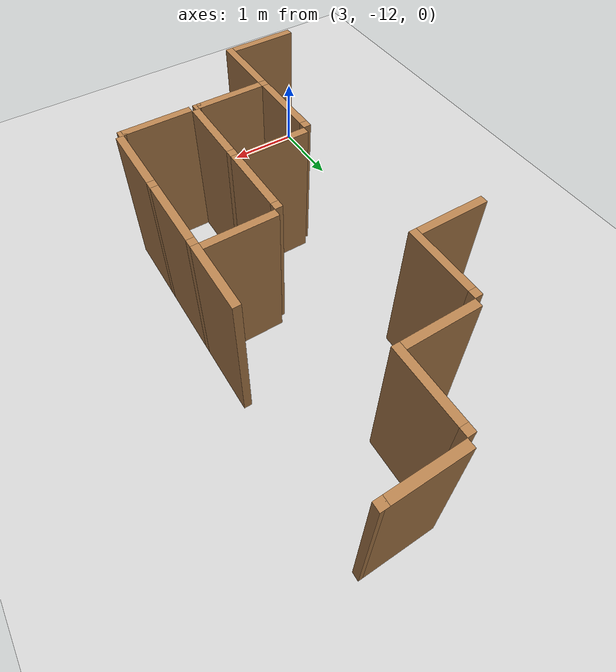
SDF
<sdf version="1.6">
 <world name="default">
  <include><uri>model://sun</uri></include>
  <model name="ground_plane">
   <static>true</static>
   <link name="link">
    <collision name="collision"><geometry><plane><size>12.0 12.0</size></plane></geometry></collision>
    <visual name="visual">
     <cast_shadows>false</cast_shadows>
     <geometry><plane><size>12.0 12.0</size></plane></geometry>
     <material>
      <script><uri>file://media/materials/scripts/gazebo.material</uri><name>Gazebo/Grey</name></script>
     </material>
    </visual>
   </link>
   <pose>6.0 -6.0 0 0 0 0</pose>
  </model>
  <model name="vwall_6_5">
   <pose>5.0 -6.5 1.0 0 0 0</pose>
   <link name="link">
    <collision name="collision"><geometry><box><size>0.1 0.9 2</size></box></geometry></collision>
    <visual name="visual">
     <geometry><box><size>0.1 0.9 2</size></box></geometry>
     <material>
      <script><uri>file://media/materials/scripts/gazebo.material</uri><name>Gazebo/Wood</name></script>
     </material>
    </visual>
   </link>
  </model>
  <model name="joint_5.0_-6.0">
   <pose>5.0 -6.0 1.0 0 0 0</pose>
   <link name="link">
    <collision name="collision"><geometry><box><size>0.1 0.1 2</size></box></geometry></collision>
    <visual name="visual">
     <geometry><box><size>0.1 0.1 2</size></box></geometry>
     <material>
      <script><uri>file://media/materials/scripts/gazebo.material</uri><name>Gazebo/Wood</name></script>
     </material>
    </visual>
   </link>
  </model>
  <model name="vwall_7_4">
   <pose>4.0 -7.5 1.0 0 0 0</pose>
   <link name="link">
    <collision name="collision"><geometry><box><size>0.1 0.9 2</size></box></geometry></collision>
    <visual name="visual">
     <geometry><box><size>0.1 0.9 2</size></box></geometry>
     <material>
      <script><uri>file://media/materials/scripts/gazebo.material</uri><name>Gazebo/Wood</name></script>
     </material>
    </visual>
   </link>
  </model>
  <model name="joint_4.0_-7.0">
   <pose>4.0 -7.0 1.0 0 0 0</pose>
   <link name="link">
    <collision name="collision"><geometry><box><size>0.1 0.1 2</size></box></geometry></collision>
    <visual name="visual">
     <geometry><box><size>0.1 0.1 2</size></box></geometry>
     <material>
      <script><uri>file://media/materials/scripts/gazebo.material</uri><name>Gazebo/Wood</name></script>
     </material>
    </visual>
   </link>
  </model>
  <model name="vwall_8_6">
   <pose>6.0 -8.5 1.0 0 0 0</pose>
   <link name="link">
    <collision name="collision"><geometry><box><size>0.1 0.9 2</size></box></geometry></collision>
    <visual name="visual">
     <geometry><box><size>0.1 0.9 2</size></box></geometry>
     <material>
      <script><uri>file://media/materials/scripts/gazebo.material</uri><name>Gazebo/Wood</name></script>
     </material>
    </visual>
   </link>
  </model>
  <model name="vwall_9_5">
   <pose>5.0 -9.5 1.0 0 0 0</pose>
   <link name="link">
    <collision name="collision"><geometry><box><size>0.1 0.9 2</size></box></geometry></collision>
    <visual name="visual">
     <geometry><box><size>0.1 0.9 2</size></box></geometry>
     <material>
      <script><uri>file://media/materials/scripts/gazebo.material</uri><name>Gazebo/Wood</name></script>
     </material>
    </visual>
   </link>
  </model>
  <model name="joint_5.0_-9.0">
   <pose>5.0 -9.0 1.0 0 0 0</pose>
   <link name="link">
    <collision name="collision"><geometry><box><size>0.1 0.1 2</size></box></geometry></collision>
    <visual name="visual">
     <geometry><box><size>0.1 0.1 2</size></box></geometry>
     <material>
      <script><uri>file://media/materials/scripts/gazebo.material</uri><name>Gazebo/Wood</name></script>
     </material>
    </visual>
   </link>
  </model>
  <model name="vwall_9_6">
   <pose>6.0 -9.5 1.0 0 0 0</pose>
   <link name="link">
    <collision name="collision"><geometry><box><size>0.1 0.9 2</size></box></geometry></collision>
    <visual name="visual">
     <geometry><box><size>0.1 0.9 2</size></box></geometry>
     <material>
      <script><uri>file://media/materials/scripts/gazebo.material</uri><name>Gazebo/Wood</name></script>
     </material>
    </visual>
   </link>
  </model>
  <model name="joint_6.0_-9.0">
   <pose>6.0 -9.0 1.0 0 0 0</pose>
   <link name="link">
    <collision name="collision"><geometry><box><size>0.1 0.1 2</size></box></geometry></collision>
    <visual name="visual">
     <geometry><box><size>0.1 0.1 2</size></box></geometry>
     <material>
      <script><uri>file://media/materials/scripts/gazebo.material</uri><name>Gazebo/Wood</name></script>
     </material>
    </visual>
   </link>
  </model>
  <model name="vwall_10_4">
   <pose>4.0 -10.5 1.0 0 0 0</pose>
   <link name="link">
    <collision name="collision"><geometry><box><size>0.1 0.9 2</size></box></geometry></collision>
    <visual name="visual">
     <geometry><box><size>0.1 0.9 2</size></box></geometry>
     <material>
      <script><uri>file://media/materials/scripts/gazebo.material</uri><name>Gazebo/Wood</name></script>
     </material>
    </visual>
   </link>
  </model>
  <model name="joint_4.0_-10.0">
   <pose>4.0 -10.0 1.0 0 0 0</pose>
   <link name="link">
    <collision name="collision"><geometry><box><size>0.1 0.1 2</size></box></geometry></collision>
    <visual name="visual">
     <geometry><box><size>0.1 0.1 2</size></box></geometry>
     <material>
      <script><uri>file://media/materials/scripts/gazebo.material</uri><name>Gazebo/Wood</name></script>
     </material>
    </visual>
   </link>
  </model>
  <model name="vwall_10_5">
   <pose>5.0 -10.5 1.0 0 0 0</pose>
   <link name="link">
    <collision name="collision"><geometry><box><size>0.1 0.9 2</size></box></geometry></collision>
    <visual name="visual">
     <geometry><box><size>0.1 0.9 2</size></box></geometry>
     <material>
      <script><uri>file://media/materials/scripts/gazebo.material</uri><name>Gazebo/Wood</name></script>
     </material>
    </visual>
   </link>
  </model>
  <model name="joint_5.0_-10.0">
   <pose>5.0 -10.0 1.0 0 0 0</pose>
   <link name="link">
    <collision name="collision"><geometry><box><size>0.1 0.1 2</size></box></geometry></collision>
    <visual name="visual">
     <geometry><box><size>0.1 0.1 2</size></box></geometry>
     <material>
      <script><uri>file://media/materials/scripts/gazebo.material</uri><name>Gazebo/Wood</name></script>
     </material>
    </visual>
   </link>
  </model>
  <model name="vwall_10_6">
   <pose>6.0 -10.5 1.0 0 0 0</pose>
   <link name="link">
    <collision name="collision"><geometry><box><size>0.1 0.9 2</size></box></geometry></collision>
    <visual name="visual">
     <geometry><box><size>0.1 0.9 2</size></box></geometry>
     <material>
      <script><uri>file://media/materials/scripts/gazebo.material</uri><name>Gazebo/Wood</name></script>
     </material>
    </visual>
   </link>
  </model>
  <model name="joint_6.0_-10.0">
   <pose>6.0 -10.0 1.0 0 0 0</pose>
   <link name="link">
    <collision name="collision"><geometry><box><size>0.1 0.1 2</size></box></geometry></collision>
    <visual name="visual">
     <geometry><box><size>0.1 0.1 2</size></box></geometry>
     <material>
      <script><uri>file://media/materials/scripts/gazebo.material</uri><name>Gazebo/Wood</name></script>
     </material>
    </visual>
   </link>
  </model>
  <model name="vwall_11_4">
   <pose>4.0 -11.5 1.0 0 0 0</pose>
   <link name="link">
    <collision name="collision"><geometry><box><size>0.1 0.9 2</size></box></geometry></collision>
    <visual name="visual">
     <geometry><box><size>0.1 0.9 2</size></box></geometry>
     <material>
      <script><uri>file://media/materials/scripts/gazebo.material</uri><name>Gazebo/Wood</name></script>
     </material>
    </visual>
   </link>
  </model>
  <model name="joint_4.0_-11.0">
   <pose>4.0 -11.0 1.0 0 0 0</pose>
   <link name="link">
    <collision name="collision"><geometry><box><size>0.1 0.1 2</size></box></geometry></collision>
    <visual name="visual">
     <geometry><box><size>0.1 0.1 2</size></box></geometry>
     <material>
      <script><uri>file://media/materials/scripts/gazebo.material</uri><name>Gazebo/Wood</name></script>
     </material>
    </visual>
   </link>
  </model>
  <model name="hwall_5_5">
   <pose>5.5 -5.9 1.0 0 0 0</pose>
   <link name="link">
    <collision name="collision"><geometry><box><size>0.9 0.1 2</size></box></geometry></collision>
    <visual name="visual">
     <geometry><box><size>0.9 0.1 2</size></box></geometry>
     <material>
      <script><uri>file://media/materials/scripts/gazebo.material</uri><name>Gazebo/Wood</name></script>
     </material>
    </visual>
   </link>
  </model>
  <model name="joint_5.95_-5.9">
   <pose>5.95 -5.9 1.0 0 0 0</pose>
   <link name="link">
    <collision name="collision"><geometry><box><size>0.1 0.1 2</size></box></geometry></collision>
    <visual name="visual">
     <geometry><box><size>0.1 0.1 2</size></box></geometry>
     <material>
      <script><uri>file://media/materials/scripts/gazebo.material</uri><name>Gazebo/Wood</name></script>
     </material>
    </visual>
   </link>
  </model>
  <model name="hwall_6_4">
   <pose>4.5 -6.9 1.0 0 0 0</pose>
   <link name="link">
    <collision name="collision"><geometry><box><size>0.9 0.1 2</size></box></geometry></collision>
    <visual name="visual">
     <geometry><box><size>0.9 0.1 2</size></box></geometry>
     <material>
      <script><uri>file://media/materials/scripts/gazebo.material</uri><name>Gazebo/Wood</name></script>
     </material>
    </visual>
   </link>
  </model>
  <model name="hwall_7_3">
   <pose>3.5 -7.9 1.0 0 0 0</pose>
   <link name="link">
    <collision name="collision"><geometry><box><size>0.9 0.1 2</size></box></geometry></collision>
    <visual name="visual">
     <geometry><box><size>0.9 0.1 2</size></box></geometry>
     <material>
      <script><uri>file://media/materials/scripts/gazebo.material</uri><name>Gazebo/Wood</name></script>
     </material>
    </visual>
   </link>
  </model>
  <model name="hwall_8_5">
   <pose>5.5 -8.9 1.0 0 0 0</pose>
   <link name="link">
    <collision name="collision"><geometry><box><size>0.9 0.1 2</size></box></geometry></collision>
    <visual name="visual">
     <geometry><box><size>0.9 0.1 2</size></box></geometry>
     <material>
      <script><uri>file://media/materials/scripts/gazebo.material</uri><name>Gazebo/Wood</name></script>
     </material>
    </visual>
   </link>
  </model>
  <model name="hwall_9_4">
   <pose>4.5 -9.9 1.0 0 0 0</pose>
   <link name="link">
    <collision name="collision"><geometry><box><size>0.9 0.1 2</size></box></geometry></collision>
    <visual name="visual">
     <geometry><box><size>0.9 0.1 2</size></box></geometry>
     <material>
      <script><uri>file://media/materials/scripts/gazebo.material</uri><name>Gazebo/Wood</name></script>
     </material>
    </visual>
   </link>
  </model>
  <model name="hwall_11_3">
   <pose>3.5 -11.9 1.0 0 0 0</pose>
   <link name="link">
    <collision name="collision"><geometry><box><size>0.9 0.1 2</size></box></geometry></collision>
    <visual name="visual">
     <geometry><box><size>0.9 0.1 2</size></box></geometry>
     <material>
      <script><uri>file://media/materials/scripts/gazebo.material</uri><name>Gazebo/Wood</name></script>
     </material>
    </visual>
   </link>
  </model>
  <model name="hwall_11_4">
   <pose>4.5 -11.0 1.0 0 0 0</pose>
   <link name="link">
    <collision name="collision"><geometry><box><size>0.9 0.1 2</size></box></geometry></collision>
    <visual name="visual">
     <geometry><box><size>0.9 0.1 2</size></box></geometry>
     <material>
      <script><uri>file://media/materials/scripts/gazebo.material</uri><name>Gazebo/Wood</name></script>
     </material>
    </visual>
   </link>
  </model>
  <model name="joint_4.95_-11.0">
   <pose>4.95 -11.0 1.0 0 0 0</pose>
   <link name="link">
    <collision name="collision"><geometry><box><size>0.1 0.1 2</size></box></geometry></collision>
    <visual name="visual">
     <geometry><box><size>0.1 0.1 2</size></box></geometry>
     <material>
      <script><uri>file://media/materials/scripts/gazebo.material</uri><name>Gazebo/Wood</name></script>
     </material>
    </visual>
   </link>
  </model>
  <model name="hwall_11_5">
   <pose>5.5 -11.0 1.0 0 0 0</pose>
   <link name="link">
    <collision name="collision"><geometry><box><size>0.9 0.1 2</size></box></geometry></collision>
    <visual name="visual">
     <geometry><box><size>0.9 0.1 2</size></box></geometry>
     <material>
      <script><uri>file://media/materials/scripts/gazebo.material</uri><name>Gazebo/Wood</name></script>
     </material>
    </visual>
   </link>
  </model>
  <model name="joint_5.95_-11.0">
   <pose>5.95 -11.0 1.0 0 0 0</pose>
   <link name="link">
    <collision name="collision"><geometry><box><size>0.1 0.1 2</size></box></geometry></collision>
    <visual name="visual">
     <geometry><box><size>0.1 0.1 2</size></box></geometry>
     <material>
      <script><uri>file://media/materials/scripts/gazebo.material</uri><name>Gazebo/Wood</name></script>
     </material>
    </visual>
   </link>
  </model>
 </world>
</sdf>
